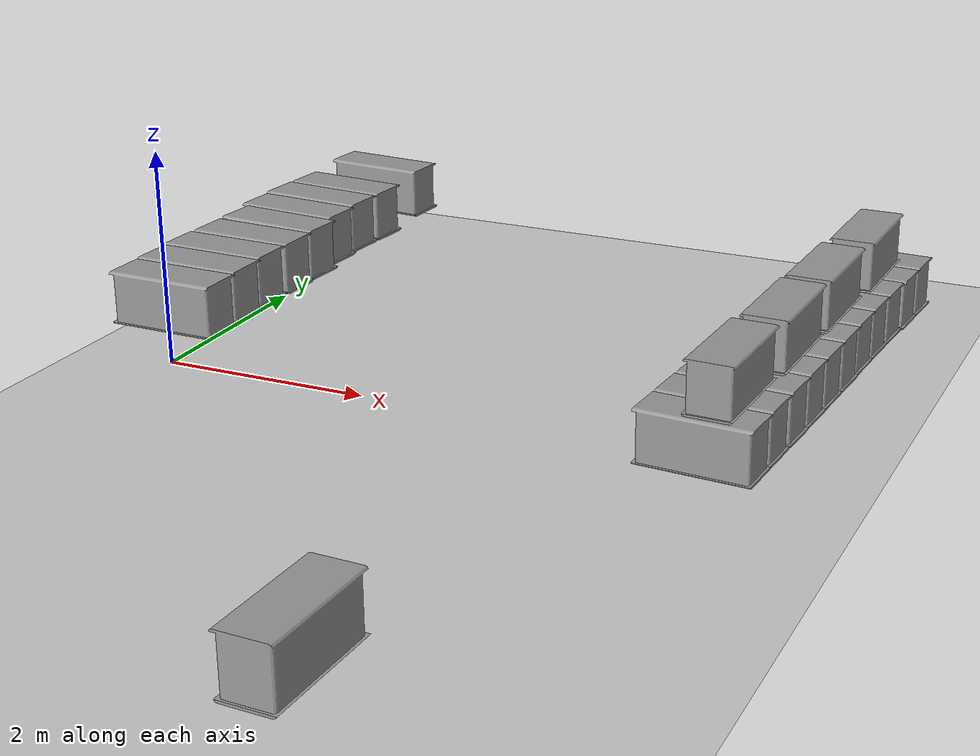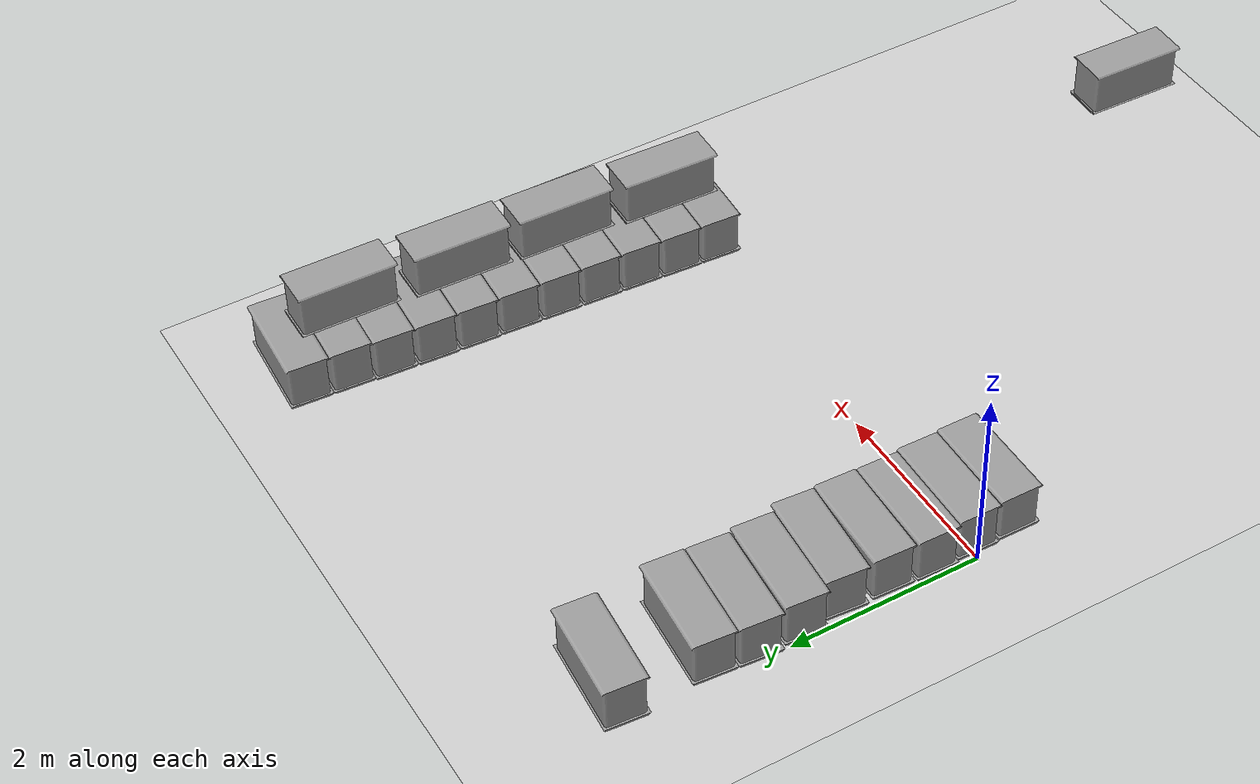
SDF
<sdf version="1.7">
 <world name="default">
  <model name="ground_plane">
   <static>1</static>
   <link name="link">
    <collision name="collision">
     <geometry><plane><normal>0 0 1</normal><size>100 100</size></plane></geometry>
     <surface>
      <contact><collide_bitmask>65535</collide_bitmask></contact>
      <friction><ode><mu>100</mu><mu2>50</mu2></ode></friction>
     </surface>
    </collision>
    <visual name="visual">
     <cast_shadows>0</cast_shadows>
     <geometry><plane><normal>0 0 1</normal><size>100 100</size></plane></geometry>
     <material>
      <script><uri>file://media/materials/scripts/gazebo.material</uri><name>Gazebo/Grey</name></script>
     </material>
    </visual>
   </link>
  </model>
  <model name="cotton_me_0_clone_6_clone_0_clone_clone">
   <link name="link_1">
    <inertial>
     <mass>1</mass>
     <inertia>
      <ixx>0.166667</ixx>
      <ixy>0</ixy>
      <ixz>0</ixz>
      <iyy>0.166667</iyy>
      <iyz>0</iyz>
      <izz>0.166667</izz>
     </inertia>
    </inertial>
    <visual name="visual">
     <geometry><mesh><uri>/home/cyun/cotton_box.stl</uri><scale>1 1 1</scale></mesh></geometry>
     <material>
      <lighting>1</lighting>
      <script><uri>file://media/materials/scripts/gazebo.material</uri><name>Gazebo/Grey</name></script>
      <shader type="pixel"/>
     </material>
    </visual>
    <collision name="collision">
     <geometry><mesh><uri>/home/cyun/cotton_box.stl</uri><scale>1 1 1</scale></mesh></geometry>
     <surface>
      <friction>
       <ode><mu>1</mu><mu2>1</mu2><fdir1>0 0 0</fdir1><slip1>0</slip1><slip2>0</slip2></ode>
       <torsional>
        <coefficient>1</coefficient>
        <patch_radius>0</patch_radius>
        <surface_radius>0</surface_radius>
        <use_patch_radius>1</use_patch_radius>
        <ode><slip>0</slip></ode>
       </torsional>
      </friction>
      <bounce><restitution_coefficient>0</restitution_coefficient><threshold>1e+06</threshold></bounce>
      <contact>
       <collide_without_contact>0</collide_without_contact>
       <collide_without_contact_bitmask>1</collide_without_contact_bitmask>
       <collide_bitmask>1</collide_bitmask>
       <ode>
        <soft_cfm>0</soft_cfm>
        <soft_erp>0.2</soft_erp>
        <kp>1e+13</kp>
        <kd>1</kd>
        <max_vel>0.01</max_vel>
        <min_depth>0</min_depth>
       </ode>
       <bullet>
        <split_impulse>1</split_impulse>
        <split_impulse_penetration_threshold>-0.01</split_impulse_penetration_threshold>
        <soft_cfm>0</soft_cfm>
        <soft_erp>0.2</soft_erp>
        <kp>1e+13</kp>
        <kd>1</kd>
       </bullet>
      </contact>
     </surface>
    </collision>
   </link>
   <static>0</static>
   <pose>0.187807 3.78887 0.509994 1.1e-05 -4e-06 1.49023</pose>
  </model>
  <model name="cotton_me_0_clone_6_clone_0_clone_clone_1">
   <link name="link_1">
    <inertial>
     <mass>1</mass>
     <inertia>
      <ixx>0.166667</ixx>
      <ixy>0</ixy>
      <ixz>0</ixz>
      <iyy>0.166667</iyy>
      <iyz>0</iyz>
      <izz>0.166667</izz>
     </inertia>
    </inertial>
    <visual name="visual">
     <geometry><mesh><uri>/home/cyun/cotton_box.stl</uri><scale>1 1 1</scale></mesh></geometry>
     <material>
      <lighting>1</lighting>
      <script><uri>file://media/materials/scripts/gazebo.material</uri><name>Gazebo/Grey</name></script>
      <shader type="pixel"/>
     </material>
    </visual>
    <collision name="collision">
     <geometry><mesh><uri>/home/cyun/cotton_box.stl</uri><scale>1 1 1</scale></mesh></geometry>
     <surface>
      <friction>
       <ode><mu>1</mu><mu2>1</mu2><fdir1>0 0 0</fdir1><slip1>0</slip1><slip2>0</slip2></ode>
       <torsional>
        <coefficient>1</coefficient>
        <patch_radius>0</patch_radius>
        <surface_radius>0</surface_radius>
        <use_patch_radius>1</use_patch_radius>
        <ode><slip>0</slip></ode>
       </torsional>
      </friction>
      <bounce><restitution_coefficient>0</restitution_coefficient><threshold>1e+06</threshold></bounce>
      <contact>
       <collide_without_contact>0</collide_without_contact>
       <collide_without_contact_bitmask>1</collide_without_contact_bitmask>
       <collide_bitmask>1</collide_bitmask>
       <ode>
        <soft_cfm>0</soft_cfm>
        <soft_erp>0.2</soft_erp>
        <kp>1e+13</kp>
        <kd>1</kd>
        <max_vel>0.01</max_vel>
        <min_depth>0</min_depth>
       </ode>
       <bullet>
        <split_impulse>1</split_impulse>
        <split_impulse_penetration_threshold>-0.01</split_impulse_penetration_threshold>
        <soft_cfm>0</soft_cfm>
        <soft_erp>0.2</soft_erp>
        <kp>1e+13</kp>
        <kd>1</kd>
       </bullet>
      </contact>
     </surface>
    </collision>
   </link>
   <static>0</static>
   <pose>0.22634 2.9025 0.509992 1.8e-05 -0 1.48964</pose>
  </model>
  <model name="cotton_me_0_clone_6_clone_0_clone_clone_2">
   <link name="link_1">
    <inertial>
     <mass>1</mass>
     <inertia>
      <ixx>0.166667</ixx>
      <ixy>0</ixy>
      <ixz>0</ixz>
      <iyy>0.166667</iyy>
      <iyz>0</iyz>
      <izz>0.166667</izz>
     </inertia>
    </inertial>
    <visual name="visual">
     <geometry><mesh><uri>/home/cyun/cotton_box.stl</uri><scale>1 1 1</scale></mesh></geometry>
     <material>
      <lighting>1</lighting>
      <script><uri>file://media/materials/scripts/gazebo.material</uri><name>Gazebo/Grey</name></script>
      <shader type="pixel"/>
     </material>
    </visual>
    <collision name="collision">
     <geometry><mesh><uri>/home/cyun/cotton_box.stl</uri><scale>1 1 1</scale></mesh></geometry>
     <surface>
      <friction>
       <ode><mu>1</mu><mu2>1</mu2><fdir1>0 0 0</fdir1><slip1>0</slip1><slip2>0</slip2></ode>
       <torsional>
        <coefficient>1</coefficient>
        <patch_radius>0</patch_radius>
        <surface_radius>0</surface_radius>
        <use_patch_radius>1</use_patch_radius>
        <ode><slip>0</slip></ode>
       </torsional>
      </friction>
      <bounce><restitution_coefficient>0</restitution_coefficient><threshold>1e+06</threshold></bounce>
      <contact>
       <collide_without_contact>0</collide_without_contact>
       <collide_without_contact_bitmask>1</collide_without_contact_bitmask>
       <collide_bitmask>1</collide_bitmask>
       <ode>
        <soft_cfm>0</soft_cfm>
        <soft_erp>0.2</soft_erp>
        <kp>1e+13</kp>
        <kd>1</kd>
        <max_vel>0.01</max_vel>
        <min_depth>0</min_depth>
       </ode>
       <bullet>
        <split_impulse>1</split_impulse>
        <split_impulse_penetration_threshold>-0.01</split_impulse_penetration_threshold>
        <soft_cfm>0</soft_cfm>
        <soft_erp>0.2</soft_erp>
        <kp>1e+13</kp>
        <kd>1</kd>
       </bullet>
      </contact>
     </surface>
    </collision>
   </link>
   <static>0</static>
   <pose>0.187746 2.46297 0.51 0 2e-06 1.48846</pose>
  </model>
  <model name="cotton_me_0_clone_6_clone_0_clone_clone_3">
   <link name="link_1">
    <inertial>
     <mass>1</mass>
     <inertia>
      <ixx>0.166667</ixx>
      <ixy>0</ixy>
      <ixz>0</ixz>
      <iyy>0.166667</iyy>
      <iyz>0</iyz>
      <izz>0.166667</izz>
     </inertia>
    </inertial>
    <visual name="visual">
     <geometry><mesh><uri>/home/cyun/cotton_box.stl</uri><scale>1 1 1</scale></mesh></geometry>
     <material>
      <lighting>1</lighting>
      <script><uri>file://media/materials/scripts/gazebo.material</uri><name>Gazebo/Grey</name></script>
      <shader type="pixel"/>
     </material>
    </visual>
    <collision name="collision">
     <geometry><mesh><uri>/home/cyun/cotton_box.stl</uri><scale>1 1 1</scale></mesh></geometry>
     <surface>
      <friction>
       <ode><mu>1</mu><mu2>1</mu2><fdir1>0 0 0</fdir1><slip1>0</slip1><slip2>0</slip2></ode>
       <torsional>
        <coefficient>1</coefficient>
        <patch_radius>0</patch_radius>
        <surface_radius>0</surface_radius>
        <use_patch_radius>1</use_patch_radius>
        <ode><slip>0</slip></ode>
       </torsional>
      </friction>
      <bounce><restitution_coefficient>0</restitution_coefficient><threshold>1e+06</threshold></bounce>
      <contact>
       <collide_without_contact>0</collide_without_contact>
       <collide_without_contact_bitmask>1</collide_without_contact_bitmask>
       <collide_bitmask>1</collide_bitmask>
       <ode>
        <soft_cfm>0</soft_cfm>
        <soft_erp>0.2</soft_erp>
        <kp>1e+13</kp>
        <kd>1</kd>
        <max_vel>0.01</max_vel>
        <min_depth>0</min_depth>
       </ode>
       <bullet>
        <split_impulse>1</split_impulse>
        <split_impulse_penetration_threshold>-0.01</split_impulse_penetration_threshold>
        <soft_cfm>0</soft_cfm>
        <soft_erp>0.2</soft_erp>
        <kp>1e+13</kp>
        <kd>1</kd>
       </bullet>
      </contact>
     </surface>
    </collision>
   </link>
   <static>0</static>
   <pose>0.192483 2.00629 0.509991 0 -0 1.49517</pose>
  </model>
  <model name="cotton_me_0_clone_6_clone_0_clone_clone_4">
   <link name="link_1">
    <inertial>
     <mass>1</mass>
     <inertia>
      <ixx>0.166667</ixx>
      <ixy>0</ixy>
      <ixz>0</ixz>
      <iyy>0.166667</iyy>
      <iyz>0</iyz>
      <izz>0.166667</izz>
     </inertia>
    </inertial>
    <visual name="visual">
     <geometry><mesh><uri>/home/cyun/cotton_box.stl</uri><scale>1 1 1</scale></mesh></geometry>
     <material>
      <lighting>1</lighting>
      <script><uri>file://media/materials/scripts/gazebo.material</uri><name>Gazebo/Grey</name></script>
      <shader type="pixel"/>
     </material>
    </visual>
    <collision name="collision">
     <geometry><mesh><uri>/home/cyun/cotton_box.stl</uri><scale>1 1 1</scale></mesh></geometry>
     <surface>
      <friction>
       <ode><mu>1</mu><mu2>1</mu2><fdir1>0 0 0</fdir1><slip1>0</slip1><slip2>0</slip2></ode>
       <torsional>
        <coefficient>1</coefficient>
        <patch_radius>0</patch_radius>
        <surface_radius>0</surface_radius>
        <use_patch_radius>1</use_patch_radius>
        <ode><slip>0</slip></ode>
       </torsional>
      </friction>
      <bounce><restitution_coefficient>0</restitution_coefficient><threshold>1e+06</threshold></bounce>
      <contact>
       <collide_without_contact>0</collide_without_contact>
       <collide_without_contact_bitmask>1</collide_without_contact_bitmask>
       <collide_bitmask>1</collide_bitmask>
       <ode>
        <soft_cfm>0</soft_cfm>
        <soft_erp>0.2</soft_erp>
        <kp>1e+13</kp>
        <kd>1</kd>
        <max_vel>0.01</max_vel>
        <min_depth>0</min_depth>
       </ode>
       <bullet>
        <split_impulse>1</split_impulse>
        <split_impulse_penetration_threshold>-0.01</split_impulse_penetration_threshold>
        <soft_cfm>0</soft_cfm>
        <soft_erp>0.2</soft_erp>
        <kp>1e+13</kp>
        <kd>1</kd>
       </bullet>
      </contact>
     </surface>
    </collision>
   </link>
   <static>0</static>
   <pose>0.247416 1.55695 0.509955 -1e-05 2e-06 1.48764</pose>
  </model>
  <model name="cotton_me_0_clone_6_clone_0_clone_clone_5">
   <link name="link_1">
    <inertial>
     <mass>1</mass>
     <inertia>
      <ixx>0.166667</ixx>
      <ixy>0</ixy>
      <ixz>0</ixz>
      <iyy>0.166667</iyy>
      <iyz>0</iyz>
      <izz>0.166667</izz>
     </inertia>
    </inertial>
    <visual name="visual">
     <geometry><mesh><uri>/home/cyun/cotton_box.stl</uri><scale>1 1 1</scale></mesh></geometry>
     <material>
      <lighting>1</lighting>
      <script><uri>file://media/materials/scripts/gazebo.material</uri><name>Gazebo/Grey</name></script>
      <shader type="pixel"/>
     </material>
    </visual>
    <collision name="collision">
     <geometry><mesh><uri>/home/cyun/cotton_box.stl</uri><scale>1 1 1</scale></mesh></geometry>
     <surface>
      <friction>
       <ode><mu>1</mu><mu2>1</mu2><fdir1>0 0 0</fdir1><slip1>0</slip1><slip2>0</slip2></ode>
       <torsional>
        <coefficient>1</coefficient>
        <patch_radius>0</patch_radius>
        <surface_radius>0</surface_radius>
        <use_patch_radius>1</use_patch_radius>
        <ode><slip>0</slip></ode>
       </torsional>
      </friction>
      <bounce><restitution_coefficient>0</restitution_coefficient><threshold>1e+06</threshold></bounce>
      <contact>
       <collide_without_contact>0</collide_without_contact>
       <collide_without_contact_bitmask>1</collide_without_contact_bitmask>
       <collide_bitmask>1</collide_bitmask>
       <ode>
        <soft_cfm>0</soft_cfm>
        <soft_erp>0.2</soft_erp>
        <kp>1e+13</kp>
        <kd>1</kd>
        <max_vel>0.01</max_vel>
        <min_depth>0</min_depth>
       </ode>
       <bullet>
        <split_impulse>1</split_impulse>
        <split_impulse_penetration_threshold>-0.01</split_impulse_penetration_threshold>
        <soft_cfm>0</soft_cfm>
        <soft_erp>0.2</soft_erp>
        <kp>1e+13</kp>
        <kd>1</kd>
       </bullet>
      </contact>
     </surface>
    </collision>
   </link>
   <static>0</static>
   <pose>0.241419 1.09602 0.50991 -5.9e-05 -4.8e-05 1.52784</pose>
  </model>
  <model name="cotton_me_0_clone_6_clone_0_clone_clone_6">
   <link name="link_1">
    <inertial>
     <mass>1</mass>
     <inertia>
      <ixx>0.166667</ixx>
      <ixy>0</ixy>
      <ixz>0</ixz>
      <iyy>0.166667</iyy>
      <iyz>0</iyz>
      <izz>0.166667</izz>
     </inertia>
    </inertial>
    <visual name="visual">
     <geometry><mesh><uri>/home/cyun/cotton_box.stl</uri><scale>1 1 1</scale></mesh></geometry>
     <material>
      <lighting>1</lighting>
      <script><uri>file://media/materials/scripts/gazebo.material</uri><name>Gazebo/Grey</name></script>
      <shader type="pixel"/>
     </material>
    </visual>
    <collision name="collision">
     <geometry><mesh><uri>/home/cyun/cotton_box.stl</uri><scale>1 1 1</scale></mesh></geometry>
     <surface>
      <friction>
       <ode><mu>1</mu><mu2>1</mu2><fdir1>0 0 0</fdir1><slip1>0</slip1><slip2>0</slip2></ode>
       <torsional>
        <coefficient>1</coefficient>
        <patch_radius>0</patch_radius>
        <surface_radius>0</surface_radius>
        <use_patch_radius>1</use_patch_radius>
        <ode><slip>0</slip></ode>
       </torsional>
      </friction>
      <bounce><restitution_coefficient>0</restitution_coefficient><threshold>1e+06</threshold></bounce>
      <contact>
       <collide_without_contact>0</collide_without_contact>
       <collide_without_contact_bitmask>1</collide_without_contact_bitmask>
       <collide_bitmask>1</collide_bitmask>
       <ode>
        <soft_cfm>0</soft_cfm>
        <soft_erp>0.2</soft_erp>
        <kp>1e+13</kp>
        <kd>1</kd>
        <max_vel>0.01</max_vel>
        <min_depth>0</min_depth>
       </ode>
       <bullet>
        <split_impulse>1</split_impulse>
        <split_impulse_penetration_threshold>-0.01</split_impulse_penetration_threshold>
        <soft_cfm>0</soft_cfm>
        <soft_erp>0.2</soft_erp>
        <kp>1e+13</kp>
        <kd>1</kd>
       </bullet>
      </contact>
     </surface>
    </collision>
   </link>
   <static>0</static>
   <pose>0.220381 0.648071 0.509977 -3.9e-05 -2.8e-05 1.54405</pose>
  </model>
  <model name="cotton_me_0_clone_6_clone_0_clone_clone_7">
   <link name="link_1">
    <inertial>
     <mass>1</mass>
     <inertia>
      <ixx>0.166667</ixx>
      <ixy>0</ixy>
      <ixz>0</ixz>
      <iyy>0.166667</iyy>
      <iyz>0</iyz>
      <izz>0.166667</izz>
     </inertia>
    </inertial>
    <visual name="visual">
     <geometry><mesh><uri>/home/cyun/cotton_box.stl</uri><scale>1 1 1</scale></mesh></geometry>
     <material>
      <lighting>1</lighting>
      <script><uri>file://media/materials/scripts/gazebo.material</uri><name>Gazebo/Grey</name></script>
      <shader type="pixel"/>
     </material>
    </visual>
    <collision name="collision">
     <geometry><mesh><uri>/home/cyun/cotton_box.stl</uri><scale>1 1 1</scale></mesh></geometry>
     <surface>
      <friction>
       <ode><mu>1</mu><mu2>1</mu2><fdir1>0 0 0</fdir1><slip1>0</slip1><slip2>0</slip2></ode>
       <torsional>
        <coefficient>1</coefficient>
        <patch_radius>0</patch_radius>
        <surface_radius>0</surface_radius>
        <use_patch_radius>1</use_patch_radius>
        <ode><slip>0</slip></ode>
       </torsional>
      </friction>
      <bounce><restitution_coefficient>0</restitution_coefficient><threshold>1e+06</threshold></bounce>
      <contact>
       <collide_without_contact>0</collide_without_contact>
       <collide_without_contact_bitmask>1</collide_without_contact_bitmask>
       <collide_bitmask>1</collide_bitmask>
       <ode>
        <soft_cfm>0</soft_cfm>
        <soft_erp>0.2</soft_erp>
        <kp>1e+13</kp>
        <kd>1</kd>
        <max_vel>0.01</max_vel>
        <min_depth>0</min_depth>
       </ode>
       <bullet>
        <split_impulse>1</split_impulse>
        <split_impulse_penetration_threshold>-0.01</split_impulse_penetration_threshold>
        <soft_cfm>0</soft_cfm>
        <soft_erp>0.2</soft_erp>
        <kp>1e+13</kp>
        <kd>1</kd>
       </bullet>
      </contact>
     </surface>
    </collision>
   </link>
   <static>0</static>
   <pose>0.236929 0.206373 0.509993 2.7e-05 -6.2e-05 1.54621</pose>
  </model>
  <model name="cotton_me_0_clone_6_clone_0_clone_clone_8">
   <link name="link_1">
    <inertial>
     <mass>1</mass>
     <inertia>
      <ixx>0.166667</ixx>
      <ixy>0</ixy>
      <ixz>0</ixz>
      <iyy>0.166667</iyy>
      <iyz>0</iyz>
      <izz>0.166667</izz>
     </inertia>
    </inertial>
    <visual name="visual">
     <geometry><mesh><uri>/home/cyun/cotton_box.stl</uri><scale>1 1 1</scale></mesh></geometry>
     <material>
      <lighting>1</lighting>
      <script><uri>file://media/materials/scripts/gazebo.material</uri><name>Gazebo/Grey</name></script>
      <shader type="pixel"/>
     </material>
    </visual>
    <collision name="collision">
     <geometry><mesh><uri>/home/cyun/cotton_box.stl</uri><scale>1 1 1</scale></mesh></geometry>
     <surface>
      <friction>
       <ode><mu>1</mu><mu2>1</mu2><fdir1>0 0 0</fdir1><slip1>0</slip1><slip2>0</slip2></ode>
       <torsional>
        <coefficient>1</coefficient>
        <patch_radius>0</patch_radius>
        <surface_radius>0</surface_radius>
        <use_patch_radius>1</use_patch_radius>
        <ode><slip>0</slip></ode>
       </torsional>
      </friction>
      <bounce><restitution_coefficient>0</restitution_coefficient><threshold>1e+06</threshold></bounce>
      <contact>
       <collide_without_contact>0</collide_without_contact>
       <collide_without_contact_bitmask>1</collide_without_contact_bitmask>
       <collide_bitmask>1</collide_bitmask>
       <ode>
        <soft_cfm>0</soft_cfm>
        <soft_erp>0.2</soft_erp>
        <kp>1e+13</kp>
        <kd>1</kd>
        <max_vel>0.01</max_vel>
        <min_depth>0</min_depth>
       </ode>
       <bullet>
        <split_impulse>1</split_impulse>
        <split_impulse_penetration_threshold>-0.01</split_impulse_penetration_threshold>
        <soft_cfm>0</soft_cfm>
        <soft_erp>0.2</soft_erp>
        <kp>1e+13</kp>
        <kd>1</kd>
       </bullet>
      </contact>
     </surface>
    </collision>
   </link>
   <static>0</static>
   <pose>0.24907 -0.240373 0.509978 8e-06 -0 1.55568</pose>
  </model>
  <model name="cotton_heng_1">
   <model name="cotton_me">
    <link name="link_1">
     <inertial>
      <mass>1</mass>
      <inertia>
       <ixx>0.166667</ixx>
       <ixy>0</ixy>
       <ixz>0</ixz>
       <iyy>0.166667</iyy>
       <iyz>0</iyz>
       <izz>0.166667</izz>
      </inertia>
     </inertial>
     <visual name="visual">
      <geometry><mesh><uri>/home/cyun/cotton_box.stl</uri><scale>1 1 1</scale></mesh></geometry>
      <material>
       <lighting>1</lighting>
       <script><uri>file://media/materials/scripts/gazebo.material</uri><name>Gazebo/Grey</name></script>
       <shader type="pixel"/>
      </material>
     </visual>
     <collision name="collision">
      <geometry><mesh><uri>/home/cyun/cotton_box.stl</uri><scale>1 1 1</scale></mesh></geometry>
      <surface>
       <friction>
        <ode><mu>1</mu><mu2>1</mu2><fdir1>0 0 0</fdir1><slip1>0</slip1><slip2>0</slip2></ode>
        <torsional>
         <coefficient>1</coefficient>
         <patch_radius>0</patch_radius>
         <surface_radius>0</surface_radius>
         <use_patch_radius>1</use_patch_radius>
         <ode><slip>0</slip></ode>
        </torsional>
       </friction>
       <bounce><restitution_coefficient>0</restitution_coefficient><threshold>1e+06</threshold></bounce>
       <contact>
        <collide_without_contact>0</collide_without_contact>
        <collide_without_contact_bitmask>1</collide_without_contact_bitmask>
        <collide_bitmask>1</collide_bitmask>
        <ode>
         <soft_cfm>0</soft_cfm>
         <soft_erp>0.2</soft_erp>
         <kp>1e+13</kp>
         <kd>1</kd>
         <max_vel>0.01</max_vel>
         <min_depth>0</min_depth>
        </ode>
        <bullet>
         <split_impulse>1</split_impulse>
         <split_impulse_penetration_threshold>-0.01</split_impulse_penetration_threshold>
         <soft_cfm>0</soft_cfm>
         <soft_erp>0.2</soft_erp>
         <kp>1e+13</kp>
         <kd>1</kd>
        </bullet>
       </contact>
      </surface>
     </collision>
    </link>
    <static>0</static>
    <pose>-1.77996 -0.007813 0 0 -0 0</pose>
   </model>
   <model name="cotton_me_clone">
    <link name="link_1">
     <inertial>
      <mass>1</mass>
      <inertia>
       <ixx>0.166667</ixx>
       <ixy>0</ixy>
       <ixz>0</ixz>
       <iyy>0.166667</iyy>
       <iyz>0</iyz>
       <izz>0.166667</izz>
      </inertia>
     </inertial>
     <visual name="visual">
      <geometry><mesh><uri>/home/cyun/cotton_box.stl</uri><scale>1 1 1</scale></mesh></geometry>
      <material>
       <lighting>1</lighting>
       <script><uri>file://media/materials/scripts/gazebo.material</uri><name>Gazebo/Grey</name></script>
       <shader type="pixel"/>
      </material>
     </visual>
     <collision name="collision">
      <geometry><mesh><uri>/home/cyun/cotton_box.stl</uri><scale>1 1 1</scale></mesh></geometry>
      <surface>
       <friction>
        <ode><mu>1</mu><mu2>1</mu2><fdir1>0 0 0</fdir1><slip1>0</slip1><slip2>0</slip2></ode>
        <torsional>
         <coefficient>1</coefficient>
         <patch_radius>0</patch_radius>
         <surface_radius>0</surface_radius>
         <use_patch_radius>1</use_patch_radius>
         <ode><slip>0</slip></ode>
        </torsional>
       </friction>
       <bounce><restitution_coefficient>0</restitution_coefficient><threshold>1e+06</threshold></bounce>
       <contact>
        <collide_without_contact>0</collide_without_contact>
        <collide_without_contact_bitmask>1</collide_without_contact_bitmask>
        <collide_bitmask>1</collide_bitmask>
        <ode>
         <soft_cfm>0</soft_cfm>
         <soft_erp>0.2</soft_erp>
         <kp>1e+13</kp>
         <kd>1</kd>
         <max_vel>0.01</max_vel>
         <min_depth>0</min_depth>
        </ode>
        <bullet>
         <split_impulse>1</split_impulse>
         <split_impulse_penetration_threshold>-0.01</split_impulse_penetration_threshold>
         <soft_cfm>0</soft_cfm>
         <soft_erp>0.2</soft_erp>
         <kp>1e+13</kp>
         <kd>1</kd>
        </bullet>
       </contact>
      </surface>
     </collision>
    </link>
    <static>0</static>
    <pose>-1.33368 -0.009895 0 0 -0 0</pose>
   </model>
   <model name="cotton_me_clone_0">
    <link name="link_1">
     <inertial>
      <mass>1</mass>
      <inertia>
       <ixx>0.166667</ixx>
       <ixy>0</ixy>
       <ixz>0</ixz>
       <iyy>0.166667</iyy>
       <iyz>0</iyz>
       <izz>0.166667</izz>
      </inertia>
     </inertial>
     <visual name="visual">
      <geometry><mesh><uri>/home/cyun/cotton_box.stl</uri><scale>1 1 1</scale></mesh></geometry>
      <material>
       <lighting>1</lighting>
       <script><uri>file://media/materials/scripts/gazebo.material</uri><name>Gazebo/Grey</name></script>
       <shader type="pixel"/>
      </material>
     </visual>
     <collision name="collision">
      <geometry><mesh><uri>/home/cyun/cotton_box.stl</uri><scale>1 1 1</scale></mesh></geometry>
      <surface>
       <friction>
        <ode><mu>1</mu><mu2>1</mu2><fdir1>0 0 0</fdir1><slip1>0</slip1><slip2>0</slip2></ode>
        <torsional>
         <coefficient>1</coefficient>
         <patch_radius>0</patch_radius>
         <surface_radius>0</surface_radius>
         <use_patch_radius>1</use_patch_radius>
         <ode><slip>0</slip></ode>
        </torsional>
       </friction>
       <bounce><restitution_coefficient>0</restitution_coefficient><threshold>1e+06</threshold></bounce>
       <contact>
        <collide_without_contact>0</collide_without_contact>
        <collide_without_contact_bitmask>1</collide_without_contact_bitmask>
        <collide_bitmask>1</collide_bitmask>
        <ode>
         <soft_cfm>0</soft_cfm>
         <soft_erp>0.2</soft_erp>
         <kp>1e+13</kp>
         <kd>1</kd>
         <max_vel>0.01</max_vel>
         <min_depth>0</min_depth>
        </ode>
        <bullet>
         <split_impulse>1</split_impulse>
         <split_impulse_penetration_threshold>-0.01</split_impulse_penetration_threshold>
         <soft_cfm>0</soft_cfm>
         <soft_erp>0.2</soft_erp>
         <kp>1e+13</kp>
         <kd>1</kd>
        </bullet>
       </contact>
      </surface>
     </collision>
    </link>
    <static>0</static>
    <pose>-0.889452 -0.005774 0 0 -0 0</pose>
   </model>
   <model name="cotton_me_clone_1">
    <link name="link_1">
     <inertial>
      <mass>1</mass>
      <inertia>
       <ixx>0.166667</ixx>
       <ixy>0</ixy>
       <ixz>0</ixz>
       <iyy>0.166667</iyy>
       <iyz>0</iyz>
       <izz>0.166667</izz>
      </inertia>
     </inertial>
     <visual name="visual">
      <geometry><mesh><uri>/home/cyun/cotton_box.stl</uri><scale>1 1 1</scale></mesh></geometry>
      <material>
       <lighting>1</lighting>
       <script><uri>file://media/materials/scripts/gazebo.material</uri><name>Gazebo/Grey</name></script>
       <shader type="pixel"/>
      </material>
     </visual>
     <collision name="collision">
      <geometry><mesh><uri>/home/cyun/cotton_box.stl</uri><scale>1 1 1</scale></mesh></geometry>
      <surface>
       <friction>
        <ode><mu>1</mu><mu2>1</mu2><fdir1>0 0 0</fdir1><slip1>0</slip1><slip2>0</slip2></ode>
        <torsional>
         <coefficient>1</coefficient>
         <patch_radius>0</patch_radius>
         <surface_radius>0</surface_radius>
         <use_patch_radius>1</use_patch_radius>
         <ode><slip>0</slip></ode>
        </torsional>
       </friction>
       <bounce><restitution_coefficient>0</restitution_coefficient><threshold>1e+06</threshold></bounce>
       <contact>
        <collide_without_contact>0</collide_without_contact>
        <collide_without_contact_bitmask>1</collide_without_contact_bitmask>
        <collide_bitmask>1</collide_bitmask>
        <ode>
         <soft_cfm>0</soft_cfm>
         <soft_erp>0.2</soft_erp>
         <kp>1e+13</kp>
         <kd>1</kd>
         <max_vel>0.01</max_vel>
         <min_depth>0</min_depth>
        </ode>
        <bullet>
         <split_impulse>1</split_impulse>
         <split_impulse_penetration_threshold>-0.01</split_impulse_penetration_threshold>
         <soft_cfm>0</soft_cfm>
         <soft_erp>0.2</soft_erp>
         <kp>1e+13</kp>
         <kd>1</kd>
        </bullet>
       </contact>
      </surface>
     </collision>
    </link>
    <static>0</static>
    <pose>-0.445737 -0.001627 0 0 -0 0</pose>
   </model>
   <model name="cotton_me_clone_2">
    <link name="link_1">
     <inertial>
      <mass>1</mass>
      <inertia>
       <ixx>0.166667</ixx>
       <ixy>0</ixy>
       <ixz>0</ixz>
       <iyy>0.166667</iyy>
       <iyz>0</iyz>
       <izz>0.166667</izz>
      </inertia>
     </inertial>
     <visual name="visual">
      <geometry><mesh><uri>/home/cyun/cotton_box.stl</uri><scale>1 1 1</scale></mesh></geometry>
      <material>
       <lighting>1</lighting>
       <script><uri>file://media/materials/scripts/gazebo.material</uri><name>Gazebo/Grey</name></script>
       <shader type="pixel"/>
      </material>
     </visual>
     <collision name="collision">
      <geometry><mesh><uri>/home/cyun/cotton_box.stl</uri><scale>1 1 1</scale></mesh></geometry>
      <surface>
       <friction>
        <ode><mu>1</mu><mu2>1</mu2><fdir1>0 0 0</fdir1><slip1>0</slip1><slip2>0</slip2></ode>
        <torsional>
         <coefficient>1</coefficient>
         <patch_radius>0</patch_radius>
         <surface_radius>0</surface_radius>
         <use_patch_radius>1</use_patch_radius>
         <ode><slip>0</slip></ode>
        </torsional>
       </friction>
       <bounce><restitution_coefficient>0</restitution_coefficient><threshold>1e+06</threshold></bounce>
       <contact>
        <collide_without_contact>0</collide_without_contact>
        <collide_without_contact_bitmask>1</collide_without_contact_bitmask>
        <collide_bitmask>1</collide_bitmask>
        <ode>
         <soft_cfm>0</soft_cfm>
         <soft_erp>0.2</soft_erp>
         <kp>1e+13</kp>
         <kd>1</kd>
         <max_vel>0.01</max_vel>
         <min_depth>0</min_depth>
        </ode>
        <bullet>
         <split_impulse>1</split_impulse>
         <split_impulse_penetration_threshold>-0.01</split_impulse_penetration_threshold>
         <soft_cfm>0</soft_cfm>
         <soft_erp>0.2</soft_erp>
         <kp>1e+13</kp>
         <kd>1</kd>
        </bullet>
       </contact>
      </surface>
     </collision>
    </link>
    <static>0</static>
    <pose>0.001194 0.000886 0 0 -0 0</pose>
   </model>
   <model name="cotton_me_clone_3">
    <link name="link_1">
     <inertial>
      <mass>1</mass>
      <inertia>
       <ixx>0.166667</ixx>
       <ixy>0</ixy>
       <ixz>0</ixz>
       <iyy>0.166667</iyy>
       <iyz>0</iyz>
       <izz>0.166667</izz>
      </inertia>
     </inertial>
     <visual name="visual">
      <geometry><mesh><uri>/home/cyun/cotton_box.stl</uri><scale>1 1 1</scale></mesh></geometry>
      <material>
       <lighting>1</lighting>
       <script><uri>file://media/materials/scripts/gazebo.material</uri><name>Gazebo/Grey</name></script>
       <shader type="pixel"/>
      </material>
     </visual>
     <collision name="collision">
      <geometry><mesh><uri>/home/cyun/cotton_box.stl</uri><scale>1 1 1</scale></mesh></geometry>
      <surface>
       <friction>
        <ode><mu>1</mu><mu2>1</mu2><fdir1>0 0 0</fdir1><slip1>0</slip1><slip2>0</slip2></ode>
        <torsional>
         <coefficient>1</coefficient>
         <patch_radius>0</patch_radius>
         <surface_radius>0</surface_radius>
         <use_patch_radius>1</use_patch_radius>
         <ode><slip>0</slip></ode>
        </torsional>
       </friction>
       <bounce><restitution_coefficient>0</restitution_coefficient><threshold>1e+06</threshold></bounce>
       <contact>
        <collide_without_contact>0</collide_without_contact>
        <collide_without_contact_bitmask>1</collide_without_contact_bitmask>
        <collide_bitmask>1</collide_bitmask>
        <ode>
         <soft_cfm>0</soft_cfm>
         <soft_erp>0.2</soft_erp>
         <kp>1e+13</kp>
         <kd>1</kd>
         <max_vel>0.01</max_vel>
         <min_depth>0</min_depth>
        </ode>
        <bullet>
         <split_impulse>1</split_impulse>
         <split_impulse_penetration_threshold>-0.01</split_impulse_penetration_threshold>
         <soft_cfm>0</soft_cfm>
         <soft_erp>0.2</soft_erp>
         <kp>1e+13</kp>
         <kd>1</kd>
        </bullet>
       </contact>
      </surface>
     </collision>
    </link>
    <static>0</static>
    <pose>0.448503 0.010252 0 0 -0 0</pose>
   </model>
   <model name="cotton_me_clone_4">
    <link name="link_1">
     <inertial>
      <mass>1</mass>
      <inertia>
       <ixx>0.166667</ixx>
       <ixy>0</ixy>
       <ixz>0</ixz>
       <iyy>0.166667</iyy>
       <iyz>0</iyz>
       <izz>0.166667</izz>
      </inertia>
     </inertial>
     <visual name="visual">
      <geometry><mesh><uri>/home/cyun/cotton_box.stl</uri><scale>1 1 1</scale></mesh></geometry>
      <material>
       <lighting>1</lighting>
       <script><uri>file://media/materials/scripts/gazebo.material</uri><name>Gazebo/Grey</name></script>
       <shader type="pixel"/>
      </material>
     </visual>
     <collision name="collision">
      <geometry><mesh><uri>/home/cyun/cotton_box.stl</uri><scale>1 1 1</scale></mesh></geometry>
      <surface>
       <friction>
        <ode><mu>1</mu><mu2>1</mu2><fdir1>0 0 0</fdir1><slip1>0</slip1><slip2>0</slip2></ode>
        <torsional>
         <coefficient>1</coefficient>
         <patch_radius>0</patch_radius>
         <surface_radius>0</surface_radius>
         <use_patch_radius>1</use_patch_radius>
         <ode><slip>0</slip></ode>
        </torsional>
       </friction>
       <bounce><restitution_coefficient>0</restitution_coefficient><threshold>1e+06</threshold></bounce>
       <contact>
        <collide_without_contact>0</collide_without_contact>
        <collide_without_contact_bitmask>1</collide_without_contact_bitmask>
        <collide_bitmask>1</collide_bitmask>
        <ode>
         <soft_cfm>0</soft_cfm>
         <soft_erp>0.2</soft_erp>
         <kp>1e+13</kp>
         <kd>1</kd>
         <max_vel>0.01</max_vel>
         <min_depth>0</min_depth>
        </ode>
        <bullet>
         <split_impulse>1</split_impulse>
         <split_impulse_penetration_threshold>-0.01</split_impulse_penetration_threshold>
         <soft_cfm>0</soft_cfm>
         <soft_erp>0.2</soft_erp>
         <kp>1e+13</kp>
         <kd>1</kd>
        </bullet>
       </contact>
      </surface>
     </collision>
    </link>
    <static>0</static>
    <pose>0.894659 0.014624 0 0 -0 0</pose>
   </model>
   <model name="cotton_me_clone_5">
    <link name="link_1">
     <inertial>
      <mass>1</mass>
      <inertia>
       <ixx>0.166667</ixx>
       <ixy>0</ixy>
       <ixz>0</ixz>
       <iyy>0.166667</iyy>
       <iyz>0</iyz>
       <izz>0.166667</izz>
      </inertia>
     </inertial>
     <visual name="visual">
      <geometry><mesh><uri>/home/cyun/cotton_box.stl</uri><scale>1 1 1</scale></mesh></geometry>
      <material>
       <lighting>1</lighting>
       <script><uri>file://media/materials/scripts/gazebo.material</uri><name>Gazebo/Grey</name></script>
       <shader type="pixel"/>
      </material>
     </visual>
     <collision name="collision">
      <geometry><mesh><uri>/home/cyun/cotton_box.stl</uri><scale>1 1 1</scale></mesh></geometry>
      <surface>
       <friction>
        <ode><mu>1</mu><mu2>1</mu2><fdir1>0 0 0</fdir1><slip1>0</slip1><slip2>0</slip2></ode>
        <torsional>
         <coefficient>1</coefficient>
         <patch_radius>0</patch_radius>
         <surface_radius>0</surface_radius>
         <use_patch_radius>1</use_patch_radius>
         <ode><slip>0</slip></ode>
        </torsional>
       </friction>
       <bounce><restitution_coefficient>0</restitution_coefficient><threshold>1e+06</threshold></bounce>
       <contact>
        <collide_without_contact>0</collide_without_contact>
        <collide_without_contact_bitmask>1</collide_without_contact_bitmask>
        <collide_bitmask>1</collide_bitmask>
        <ode>
         <soft_cfm>0</soft_cfm>
         <soft_erp>0.2</soft_erp>
         <kp>1e+13</kp>
         <kd>1</kd>
         <max_vel>0.01</max_vel>
         <min_depth>0</min_depth>
        </ode>
        <bullet>
         <split_impulse>1</split_impulse>
         <split_impulse_penetration_threshold>-0.01</split_impulse_penetration_threshold>
         <soft_cfm>0</soft_cfm>
         <soft_erp>0.2</soft_erp>
         <kp>1e+13</kp>
         <kd>1</kd>
        </bullet>
       </contact>
      </surface>
     </collision>
    </link>
    <static>0</static>
    <pose>1.33945 0.013464 0 0 -0 0</pose>
   </model>
   <model name="cotton_me_clone_6">
    <link name="link_1">
     <inertial>
      <mass>1</mass>
      <inertia>
       <ixx>0.166667</ixx>
       <ixy>0</ixy>
       <ixz>0</ixz>
       <iyy>0.166667</iyy>
       <iyz>0</iyz>
       <izz>0.166667</izz>
      </inertia>
     </inertial>
     <visual name="visual">
      <geometry><mesh><uri>/home/cyun/cotton_box.stl</uri><scale>1 1 1</scale></mesh></geometry>
      <material>
       <lighting>1</lighting>
       <script><uri>file://media/materials/scripts/gazebo.material</uri><name>Gazebo/Grey</name></script>
       <shader type="pixel"/>
      </material>
     </visual>
     <collision name="collision">
      <geometry><mesh><uri>/home/cyun/cotton_box.stl</uri><scale>1 1 1</scale></mesh></geometry>
      <surface>
       <friction>
        <ode><mu>1</mu><mu2>1</mu2><fdir1>0 0 0</fdir1><slip1>0</slip1><slip2>0</slip2></ode>
        <torsional>
         <coefficient>1</coefficient>
         <patch_radius>0</patch_radius>
         <surface_radius>0</surface_radius>
         <use_patch_radius>1</use_patch_radius>
         <ode><slip>0</slip></ode>
        </torsional>
       </friction>
       <bounce><restitution_coefficient>0</restitution_coefficient><threshold>1e+06</threshold></bounce>
       <contact>
        <collide_without_contact>0</collide_without_contact>
        <collide_without_contact_bitmask>1</collide_without_contact_bitmask>
        <collide_bitmask>1</collide_bitmask>
        <ode>
         <soft_cfm>0</soft_cfm>
         <soft_erp>0.2</soft_erp>
         <kp>1e+13</kp>
         <kd>1</kd>
         <max_vel>0.01</max_vel>
         <min_depth>0</min_depth>
        </ode>
        <bullet>
         <split_impulse>1</split_impulse>
         <split_impulse_penetration_threshold>-0.01</split_impulse_penetration_threshold>
         <soft_cfm>0</soft_cfm>
         <soft_erp>0.2</soft_erp>
         <kp>1e+13</kp>
         <kd>1</kd>
        </bullet>
       </contact>
      </surface>
     </collision>
    </link>
    <static>0</static>
    <pose>1.77292 -0.000762 0 0 -0 0</pose>
   </model>
   <model name="cotton_me_clone_7">
    <link name="link_1">
     <inertial>
      <mass>1</mass>
      <inertia>
       <ixx>0.166667</ixx>
       <ixy>0</ixy>
       <ixz>0</ixz>
       <iyy>0.166667</iyy>
       <iyz>0</iyz>
       <izz>0.166667</izz>
      </inertia>
     </inertial>
     <visual name="visual">
      <geometry><mesh><uri>/home/cyun/cotton_box.stl</uri><scale>1 1 1</scale></mesh></geometry>
      <material>
       <lighting>1</lighting>
       <script><uri>file://media/materials/scripts/gazebo.material</uri><name>Gazebo/Grey</name></script>
       <shader type="pixel"/>
      </material>
     </visual>
     <collision name="collision">
      <geometry><mesh><uri>/home/cyun/cotton_box.stl</uri><scale>1 1 1</scale></mesh></geometry>
      <surface>
       <friction>
        <ode><mu>1</mu><mu2>1</mu2><fdir1>0 0 0</fdir1><slip1>0</slip1><slip2>0</slip2></ode>
        <torsional>
         <coefficient>1</coefficient>
         <patch_radius>0</patch_radius>
         <surface_radius>0</surface_radius>
         <use_patch_radius>1</use_patch_radius>
         <ode><slip>0</slip></ode>
        </torsional>
       </friction>
       <bounce><restitution_coefficient>0</restitution_coefficient><threshold>1e+06</threshold></bounce>
       <contact>
        <collide_without_contact>0</collide_without_contact>
        <collide_without_contact_bitmask>1</collide_without_contact_bitmask>
        <collide_bitmask>1</collide_bitmask>
        <ode>
         <soft_cfm>0</soft_cfm>
         <soft_erp>0.2</soft_erp>
         <kp>1e+13</kp>
         <kd>1</kd>
         <max_vel>0.01</max_vel>
         <min_depth>0</min_depth>
        </ode>
        <bullet>
         <split_impulse>1</split_impulse>
         <split_impulse_penetration_threshold>-0.01</split_impulse_penetration_threshold>
         <soft_cfm>0</soft_cfm>
         <soft_erp>0.2</soft_erp>
         <kp>1e+13</kp>
         <kd>1</kd>
        </bullet>
       </contact>
      </surface>
     </collision>
    </link>
    <static>0</static>
    <pose>2.21576 -0.001881 0 0 -0 0</pose>
   </model>
   <model name="cotton_me_clone_8">
    <link name="link_1">
     <inertial>
      <mass>1</mass>
      <inertia>
       <ixx>0.166667</ixx>
       <ixy>0</ixy>
       <ixz>0</ixz>
       <iyy>0.166667</iyy>
       <iyz>0</iyz>
       <izz>0.166667</izz>
      </inertia>
     </inertial>
     <visual name="visual">
      <geometry><mesh><uri>/home/cyun/cotton_box.stl</uri><scale>1 1 1</scale></mesh></geometry>
      <material>
       <lighting>1</lighting>
       <script><uri>file://media/materials/scripts/gazebo.material</uri><name>Gazebo/Grey</name></script>
       <shader type="pixel"/>
      </material>
     </visual>
     <collision name="collision">
      <geometry><mesh><uri>/home/cyun/cotton_box.stl</uri><scale>1 1 1</scale></mesh></geometry>
      <surface>
       <friction>
        <ode><mu>1</mu><mu2>1</mu2><fdir1>0 0 0</fdir1><slip1>0</slip1><slip2>0</slip2></ode>
        <torsional>
         <coefficient>1</coefficient>
         <patch_radius>0</patch_radius>
         <surface_radius>0</surface_radius>
         <use_patch_radius>1</use_patch_radius>
         <ode><slip>0</slip></ode>
        </torsional>
       </friction>
       <bounce><restitution_coefficient>0</restitution_coefficient><threshold>1e+06</threshold></bounce>
       <contact>
        <collide_without_contact>0</collide_without_contact>
        <collide_without_contact_bitmask>1</collide_without_contact_bitmask>
        <collide_bitmask>1</collide_bitmask>
        <ode>
         <soft_cfm>0</soft_cfm>
         <soft_erp>0.2</soft_erp>
         <kp>1e+13</kp>
         <kd>1</kd>
         <max_vel>0.01</max_vel>
         <min_depth>0</min_depth>
        </ode>
        <bullet>
         <split_impulse>1</split_impulse>
         <split_impulse_penetration_threshold>-0.01</split_impulse_penetration_threshold>
         <soft_cfm>0</soft_cfm>
         <soft_erp>0.2</soft_erp>
         <kp>1e+13</kp>
         <kd>1</kd>
        </bullet>
       </contact>
      </surface>
     </collision>
    </link>
    <static>0</static>
    <pose>-2.22367 -0.011477 0 0 -0 0</pose>
   </model>
   <static>0</static>
   <pose>5.34922 2.04447 0.019681 6.6e-05 4.5e-05 1.50899</pose>
  </model>
  <model name="cotton_me_0_clone_6_clone_clone_2">
   <link name="link_1">
    <inertial>
     <mass>1</mass>
     <inertia>
      <ixx>0.166667</ixx>
      <ixy>0</ixy>
      <ixz>0</ixz>
      <iyy>0.166667</iyy>
      <iyz>0</iyz>
      <izz>0.166667</izz>
     </inertia>
    </inertial>
    <visual name="visual">
     <geometry><mesh><uri>/home/cyun/cotton_box.stl</uri><scale>1 1 1</scale></mesh></geometry>
     <material>
      <lighting>1</lighting>
      <script><uri>file://media/materials/scripts/gazebo.material</uri><name>Gazebo/Grey</name></script>
      <shader type="pixel"/>
     </material>
    </visual>
    <collision name="collision">
     <geometry><mesh><uri>/home/cyun/cotton_box.stl</uri><scale>1 1 1</scale></mesh></geometry>
     <surface>
      <friction>
       <ode><mu>1</mu><mu2>1</mu2><fdir1>0 0 0</fdir1><slip1>0</slip1><slip2>0</slip2></ode>
       <torsional>
        <coefficient>1</coefficient>
        <patch_radius>0</patch_radius>
        <surface_radius>0</surface_radius>
        <use_patch_radius>1</use_patch_radius>
        <ode><slip>0</slip></ode>
       </torsional>
      </friction>
      <bounce><restitution_coefficient>0</restitution_coefficient><threshold>1e+06</threshold></bounce>
      <contact>
       <collide_without_contact>0</collide_without_contact>
       <collide_without_contact_bitmask>1</collide_without_contact_bitmask>
       <collide_bitmask>1</collide_bitmask>
       <ode>
        <soft_cfm>0</soft_cfm>
        <soft_erp>0.2</soft_erp>
        <kp>1e+13</kp>
        <kd>1</kd>
        <max_vel>0.01</max_vel>
        <min_depth>0</min_depth>
       </ode>
       <bullet>
        <split_impulse>1</split_impulse>
        <split_impulse_penetration_threshold>-0.01</split_impulse_penetration_threshold>
        <soft_cfm>0</soft_cfm>
        <soft_erp>0.2</soft_erp>
        <kp>1e+13</kp>
        <kd>1</kd>
       </bullet>
      </contact>
     </surface>
    </collision>
   </link>
   <static>0</static>
   <pose>4.29727 -4.85405 0.509881 -1e-06 6e-06 -0.030983</pose>
  </model>
  <model name="cotton_me_0_clone_6_clone_clone_11">
   <link name="link_1">
    <inertial>
     <mass>1</mass>
     <inertia>
      <ixx>0.166667</ixx>
      <ixy>0</ixy>
      <ixz>0</ixz>
      <iyy>0.166667</iyy>
      <iyz>0</iyz>
      <izz>0.166667</izz>
     </inertia>
    </inertial>
    <visual name="visual">
     <geometry><mesh><uri>/home/cyun/cotton_box.stl</uri><scale>1 1 1</scale></mesh></geometry>
     <material>
      <lighting>1</lighting>
      <script><uri>file://media/materials/scripts/gazebo.material</uri><name>Gazebo/Grey</name></script>
      <shader type="pixel"/>
     </material>
    </visual>
    <collision name="collision">
     <geometry><mesh><uri>/home/cyun/cotton_box.stl</uri><scale>1 1 1</scale></mesh></geometry>
     <surface>
      <friction>
       <ode><mu>1</mu><mu2>1</mu2><fdir1>0 0 0</fdir1><slip1>0</slip1><slip2>0</slip2></ode>
       <torsional>
        <coefficient>1</coefficient>
        <patch_radius>0</patch_radius>
        <surface_radius>0</surface_radius>
        <use_patch_radius>1</use_patch_radius>
        <ode><slip>0</slip></ode>
       </torsional>
      </friction>
      <bounce><restitution_coefficient>0</restitution_coefficient><threshold>1e+06</threshold></bounce>
      <contact>
       <collide_without_contact>0</collide_without_contact>
       <collide_without_contact_bitmask>1</collide_without_contact_bitmask>
       <collide_bitmask>1</collide_bitmask>
       <ode>
        <soft_cfm>0</soft_cfm>
        <soft_erp>0.2</soft_erp>
        <kp>1e+13</kp>
        <kd>1</kd>
        <max_vel>0.01</max_vel>
        <min_depth>0</min_depth>
       </ode>
       <bullet>
        <split_impulse>1</split_impulse>
        <split_impulse_penetration_threshold>-0.01</split_impulse_penetration_threshold>
        <soft_cfm>0</soft_cfm>
        <soft_erp>0.2</soft_erp>
        <kp>1e+13</kp>
        <kd>1</kd>
       </bullet>
      </contact>
     </surface>
    </collision>
   </link>
   <static>0</static>
   <pose>5.33784 0.175353 0.509995 1.5e-05 0 -0.035115</pose>
  </model>
  <model name="cotton_me_0_clone_6_clone_clone_12">
   <link name="link_1">
    <inertial>
     <mass>1</mass>
     <inertia>
      <ixx>0.166667</ixx>
      <ixy>0</ixy>
      <ixz>0</ixz>
      <iyy>0.166667</iyy>
      <iyz>0</iyz>
      <izz>0.166667</izz>
     </inertia>
    </inertial>
    <visual name="visual">
     <geometry><mesh><uri>/home/cyun/cotton_box.stl</uri><scale>1 1 1</scale></mesh></geometry>
     <material>
      <lighting>1</lighting>
      <script><uri>file://media/materials/scripts/gazebo.material</uri><name>Gazebo/Grey</name></script>
      <shader type="pixel"/>
     </material>
    </visual>
    <collision name="collision">
     <geometry><mesh><uri>/home/cyun/cotton_box.stl</uri><scale>1 1 1</scale></mesh></geometry>
     <surface>
      <friction>
       <ode><mu>1</mu><mu2>1</mu2><fdir1>0 0 0</fdir1><slip1>0</slip1><slip2>0</slip2></ode>
       <torsional>
        <coefficient>1</coefficient>
        <patch_radius>0</patch_radius>
        <surface_radius>0</surface_radius>
        <use_patch_radius>1</use_patch_radius>
        <ode><slip>0</slip></ode>
       </torsional>
      </friction>
      <bounce><restitution_coefficient>0</restitution_coefficient><threshold>1e+06</threshold></bounce>
      <contact>
       <collide_without_contact>0</collide_without_contact>
       <collide_without_contact_bitmask>1</collide_without_contact_bitmask>
       <collide_bitmask>1</collide_bitmask>
       <ode>
        <soft_cfm>0</soft_cfm>
        <soft_erp>0.2</soft_erp>
        <kp>1e+13</kp>
        <kd>1</kd>
        <max_vel>0.01</max_vel>
        <min_depth>0</min_depth>
       </ode>
       <bullet>
        <split_impulse>1</split_impulse>
        <split_impulse_penetration_threshold>-0.01</split_impulse_penetration_threshold>
        <soft_cfm>0</soft_cfm>
        <soft_erp>0.2</soft_erp>
        <kp>1e+13</kp>
        <kd>1</kd>
       </bullet>
      </contact>
     </surface>
    </collision>
   </link>
   <static>0</static>
   <pose>5.41549 1.32853 0.509946 0.000173 0 -0.023202</pose>
  </model>
  <model name="cotton_me_0_clone_6_clone_clone_13">
   <link name="link_1">
    <inertial>
     <mass>1</mass>
     <inertia>
      <ixx>0.166667</ixx>
      <ixy>0</ixy>
      <ixz>0</ixz>
      <iyy>0.166667</iyy>
      <iyz>0</iyz>
      <izz>0.166667</izz>
     </inertia>
    </inertial>
    <visual name="visual">
     <geometry><mesh><uri>/home/cyun/cotton_box.stl</uri><scale>1 1 1</scale></mesh></geometry>
     <material>
      <lighting>1</lighting>
      <script><uri>file://media/materials/scripts/gazebo.material</uri><name>Gazebo/Grey</name></script>
      <shader type="pixel"/>
     </material>
    </visual>
    <collision name="collision">
     <geometry><mesh><uri>/home/cyun/cotton_box.stl</uri><scale>1 1 1</scale></mesh></geometry>
     <surface>
      <friction>
       <ode><mu>1</mu><mu2>1</mu2><fdir1>0 0 0</fdir1><slip1>0</slip1><slip2>0</slip2></ode>
       <torsional>
        <coefficient>1</coefficient>
        <patch_radius>0</patch_radius>
        <surface_radius>0</surface_radius>
        <use_patch_radius>1</use_patch_radius>
        <ode><slip>0</slip></ode>
       </torsional>
      </friction>
      <bounce><restitution_coefficient>0</restitution_coefficient><threshold>1e+06</threshold></bounce>
      <contact>
       <collide_without_contact>0</collide_without_contact>
       <collide_without_contact_bitmask>1</collide_without_contact_bitmask>
       <collide_bitmask>1</collide_bitmask>
       <ode>
        <soft_cfm>0</soft_cfm>
        <soft_erp>0.2</soft_erp>
        <kp>1e+13</kp>
        <kd>1</kd>
        <max_vel>0.01</max_vel>
        <min_depth>0</min_depth>
       </ode>
       <bullet>
        <split_impulse>1</split_impulse>
        <split_impulse_penetration_threshold>-0.01</split_impulse_penetration_threshold>
        <soft_cfm>0</soft_cfm>
        <soft_erp>0.2</soft_erp>
        <kp>1e+13</kp>
        <kd>1</kd>
       </bullet>
      </contact>
     </surface>
    </collision>
   </link>
   <static>0</static>
   <pose>5.46434 2.45016 0.509985 7e-06 -3e-06 -0.02428</pose>
  </model>
  <model name="cotton_me_0_clone_6_clone_clone_14">
   <link name="link_1">
    <inertial>
     <mass>1</mass>
     <inertia>
      <ixx>0.166667</ixx>
      <ixy>0</ixy>
      <ixz>0</ixz>
      <iyy>0.166667</iyy>
      <iyz>0</iyz>
      <izz>0.166667</izz>
     </inertia>
    </inertial>
    <visual name="visual">
     <geometry><mesh><uri>/home/cyun/cotton_box.stl</uri><scale>1 1 1</scale></mesh></geometry>
     <material>
      <lighting>1</lighting>
      <script><uri>file://media/materials/scripts/gazebo.material</uri><name>Gazebo/Grey</name></script>
      <shader type="pixel"/>
     </material>
    </visual>
    <collision name="collision">
     <geometry><mesh><uri>/home/cyun/cotton_box.stl</uri><scale>1 1 1</scale></mesh></geometry>
     <surface>
      <friction>
       <ode><mu>1</mu><mu2>1</mu2><fdir1>0 0 0</fdir1><slip1>0</slip1><slip2>0</slip2></ode>
       <torsional>
        <coefficient>1</coefficient>
        <patch_radius>0</patch_radius>
        <surface_radius>0</surface_radius>
        <use_patch_radius>1</use_patch_radius>
        <ode><slip>0</slip></ode>
       </torsional>
      </friction>
      <bounce><restitution_coefficient>0</restitution_coefficient><threshold>1e+06</threshold></bounce>
      <contact>
       <collide_without_contact>0</collide_without_contact>
       <collide_without_contact_bitmask>1</collide_without_contact_bitmask>
       <collide_bitmask>1</collide_bitmask>
       <ode>
        <soft_cfm>0</soft_cfm>
        <soft_erp>0.2</soft_erp>
        <kp>1e+13</kp>
        <kd>1</kd>
        <max_vel>0.01</max_vel>
        <min_depth>0</min_depth>
       </ode>
       <bullet>
        <split_impulse>1</split_impulse>
        <split_impulse_penetration_threshold>-0.01</split_impulse_penetration_threshold>
        <soft_cfm>0</soft_cfm>
        <soft_erp>0.2</soft_erp>
        <kp>1e+13</kp>
        <kd>1</kd>
       </bullet>
      </contact>
     </surface>
    </collision>
   </link>
   <static>0</static>
   <pose>5.53303 3.6446 0.509925 1e-05 1.7e-05 -0.015504</pose>
  </model>
 </world>
</sdf>
